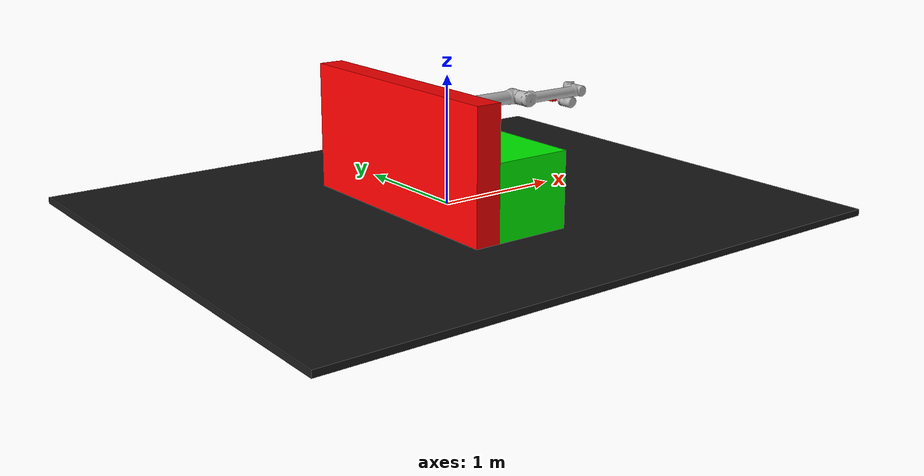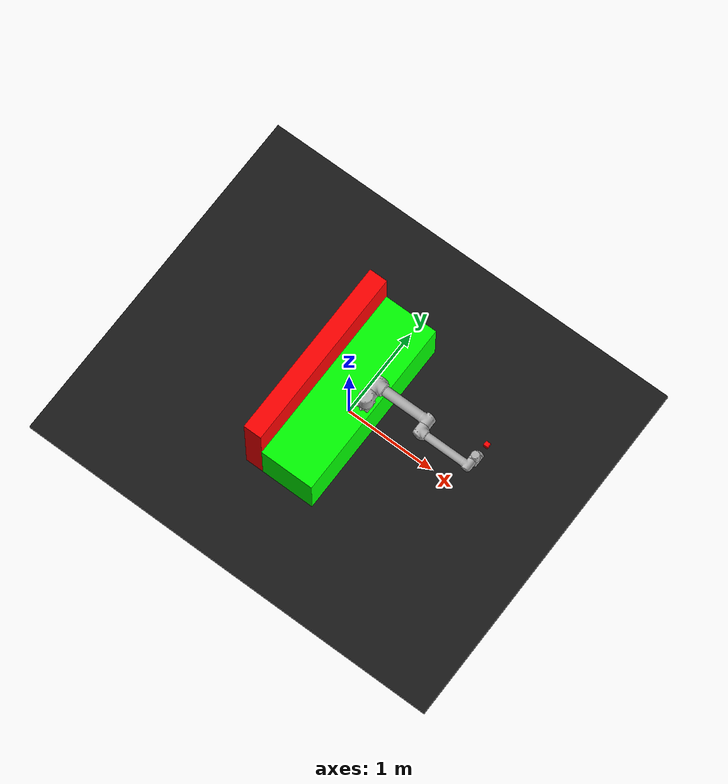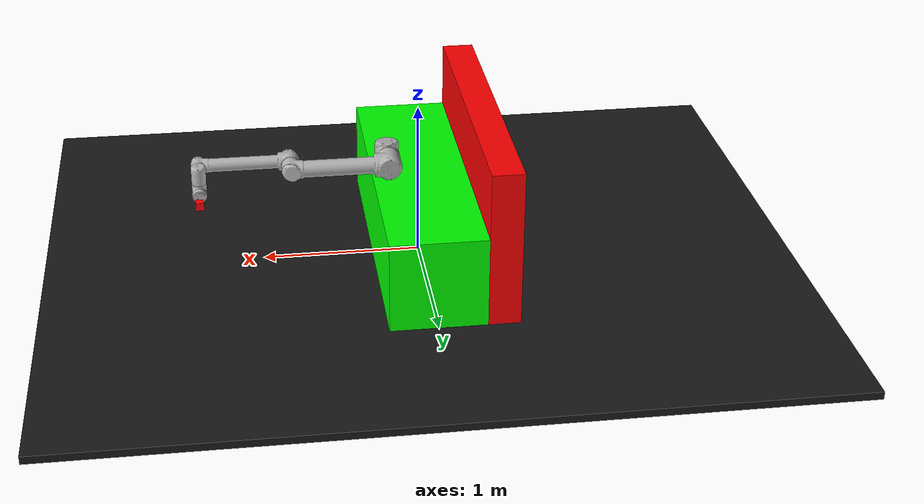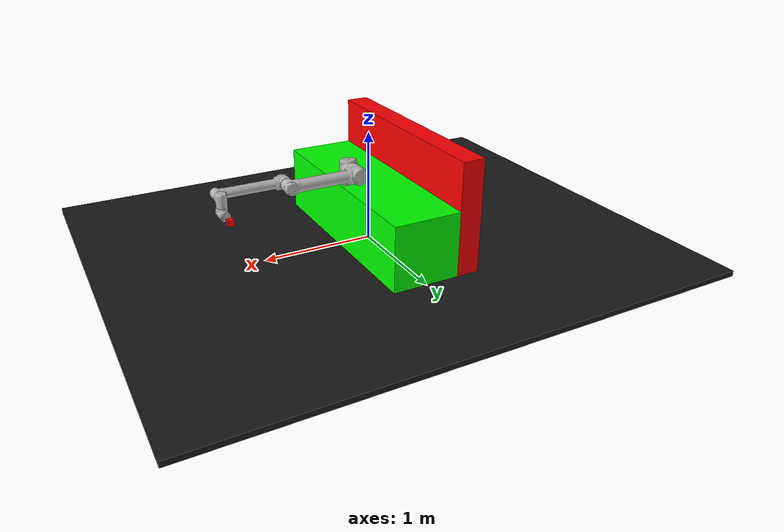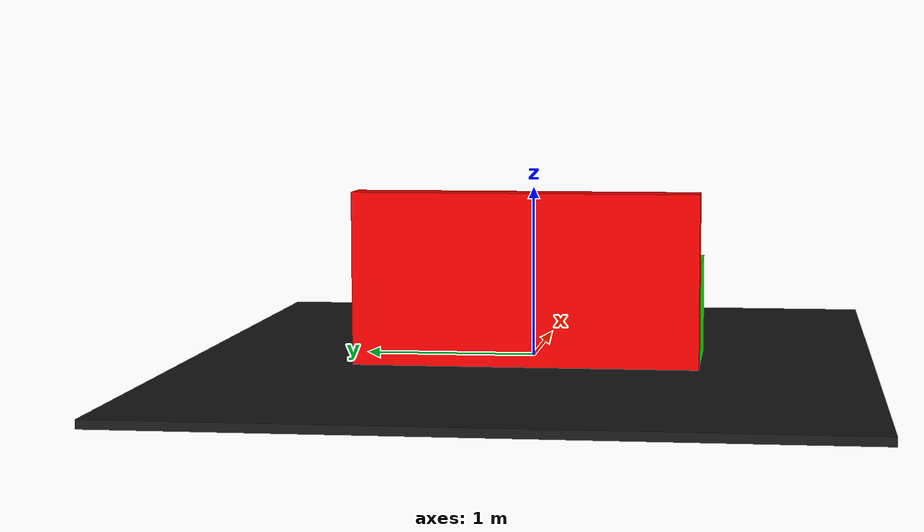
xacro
<?xml version="1.0"?>
<robot name="vegebot" xmlns:xacro="http://ros.org/wiki/xacro">

<!--
  Author: Simon Birrell
  BIRL Laboratory, Engineering Dept., University of Cambridge
-->

  <!-- Vegebot platform dimensions -->
  <xacro:property name="floor_thickness" value="0.05" />

  <xacro:property name="platform_width" value="2.0" />
  <xacro:property name="platform_height" value="0.58" />
  <xacro:property name="platform_length" value="0.6" />

  <xacro:property name="rear_platform_width" value="2.0" />
  <xacro:property name="rear_platform_height" value="1.0" />
  <xacro:property name="rear_platform_length" value="0.2" />
  <xacro:property name="rear_platform_to_origin_x" value="0.2" />

  <xacro:property name="front_platform_to_origin_arm" value="0.1" />
  <xacro:property name="top_platform_to_origin_arm" value="0.0" />

  <xacro:property name="ee_camera_offset_x" value="0.1" />
  <xacro:property name="camera_size" value="0.05" />

  <!-- common stuff -->
  <xacro:include filename="$(find ur_description)/urdf/common.gazebo.xacro" />

  <!-- ur10 -->
  <xacro:include filename="$(find vegebot_run)/urdf/ur10.urdf.xacro" />

  <!-- arm -->
  <xacro:ur10_robot prefix="" joint_limited="false"/>

  <link name="world">
    <!-- Draw a floor -->
    <visual>
      <geometry>
        <box size="${platform_length * 8.0} ${platform_width * 2.0} ${floor_thickness}" />
      </geometry>
      <origin xyz="0.0 0.0 ${-floor_thickness / 2.0}" />
      <material name="gray">
        <color rgba="0.1 0.1 0.1 1" />
      </material>
    </visual>
  </link>

  <link name="platform">

    <visual>
      <geometry>
        <box size="${platform_length} ${platform_width} ${platform_height}" />
      </geometry>
      <origin xyz="0.0 0.0 ${platform_height / 2.0}" />
      <material name="green">
        <color rgba="0 1 0 1" />
      </material>
    </visual>

  </link>

  <link name="rear_platform">

    <visual>
      <geometry>
        <box size="${rear_platform_length} ${rear_platform_width} ${rear_platform_height}" />
      </geometry>
      <origin xyz="0.0 0.0 ${rear_platform_height / 2.0}" />
      <material name="red">
        <color rgba="1 0 0 1" />
      </material>
    </visual>

  </link>

  <link name="camera_link">
    <visual>
      <geometry>
        <box size="${camera_size} ${camera_size} ${camera_size}" />
      </geometry>
      <origin xyz="0.0 0.0 0.0" />
      <material name="red">
         <color rgba="1 0 0 1" />
      </material>
    </visual>
  </link>

  <joint name="world_joint" type="fixed">
    <parent link="world" />
    <child link = "platform" />
    <origin xyz="0.0 0.0 0.0" rpy="0.0 0.0 0.0" />
  </joint>

  <joint name="world_to_rear_platform_joint" type="fixed">
    <parent link="world" />
    <child link = "rear_platform" />
    <origin xyz="${-(platform_length/2.0)-(rear_platform_length/2.0)} 0.0 0.0" rpy="0.0 0.0 0.0" />
  </joint>

  <joint name="platform_arm_joint" type="fixed">
    <parent link="platform" />
    <child link = "base_link" />
    <origin xyz="${(platform_length/2.0) - front_platform_to_origin_arm} 0.0 ${platform_height + top_platform_to_origin_arm}" rpy="0.0 0.0 0.0" />
  </joint>

  <joint name="end_effector_joint" type="fixed">
    <parent link="ee_link" />
    <child link = "camera_link" />
    <origin xyz="${ee_camera_offset_x} 0.0 0.0" rpy="0.0 0.0 0.0" />
  </joint>

</robot>

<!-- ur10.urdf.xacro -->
<robot xmlns:xacro="http://ros.org/wiki/xacro">

<!--
  Author: Kelsey Hawkins
  Contributers: Jimmy Da Silva, Ajit Krisshna N L, Muhammad Asif Rana
-->

  <xacro:include filename="$(find ur_description)/urdf/ur.transmission.xacro" />
  <xacro:include filename="$(find ur_description)/urdf/ur.gazebo.xacro" />

  <!-- Inertia parameters -->
  <xacro:property name="base_mass" value="4.0" />  <!-- This mass might be incorrect -->
  <xacro:property name="shoulder_mass" value="7.778" />
  <xacro:property name="upper_arm_mass" value="12.93" />
  <xacro:property name="forearm_mass" value="3.87" />
  <xacro:property name="wrist_1_mass" value="1.96" />
  <xacro:property name="wrist_2_mass" value="1.96" />
  <xacro:property name="wrist_3_mass" value="0.202" />

  <xacro:property name="shoulder_cog" value="0.00008 0.00244 -0.037" />
  <xacro:property name="upper_arm_cog" value="0.00001 0.15061 0.38757" />
  <xacro:property name="forearm_cog" value="-0.00012 0.06112 0.1984" />
  <xacro:property name="wrist_1_cog" value="-0.00021 -0.00112 0.02269" />
  <xacro:property name="wrist_2_cog" value="-0.00021 0.00112 0.002269" />
  <xacro:property name="wrist_3_cog" value="0 -0.001156 -0.00149" />

  <!-- Kinematic model -->
  <!-- Properties from urcontrol.conf -->
  <xacro:property name="ur10_d1" value="0.1273" />
  <xacro:property name="ur10_a2" value="-0.612" />
  <xacro:property name="ur10_a3" value="-0.5723" />
  <xacro:property name="ur10_d4" value="0.163941" />
  <xacro:property name="ur10_d5" value="0.1157" />
  <xacro:property name="ur10_d6" value="0.0922" />

  <!-- Arbitrary offsets for shoulder/elbow joints -->
  <xacro:property name="shoulder_offset" value="0.220941" />  <!-- measured from model -->
  <xacro:property name="elbow_offset" value="-0.1719" /> <!-- measured from model -->

  <!-- link lengths used in model -->
  <xacro:property name="shoulder_height" value="${ur10_d1}" />
  <xacro:property name="upper_arm_length" value="${-ur10_a2}" />
  <xacro:property name="forearm_length" value="${-ur10_a3}" />
  <xacro:property name="wrist_1_length" value="${ur10_d4 - elbow_offset - shoulder_offset}" />
  <xacro:property name="wrist_2_length" value="${ur10_d5}" />
  <xacro:property name="wrist_3_length" value="${ur10_d6}" />

  <xacro:macro name="cylinder_inertial" params="radius length mass *origin">
    <inertial>
      <mass value="${mass}" />
      <xacro:insert_block name="origin" />
      <inertia ixx="${0.0833333 * mass * (3 * radius * radius + length * length)}" ixy="0.0" ixz="0.0"
        iyy="${0.0833333 * mass * (3 * radius * radius + length * length)}" iyz="0.0"
        izz="${0.5 * mass * radius * radius}" />
    </inertial>
  </xacro:macro>

  <xacro:macro name="ur10_robot" params="prefix joint_limited
		 shoulder_pan_lower_limit:=${-pi}    shoulder_pan_upper_limit:=${pi}
		 shoulder_lift_lower_limit:=${-pi}    shoulder_lift_upper_limit:=${pi}
		 elbow_joint_lower_limit:=${-pi}    elbow_joint_upper_limit:=${pi}
		 wrist_1_lower_limit:=${-pi}    wrist_1_upper_limit:=${pi}
		 wrist_2_lower_limit:=${-pi}    wrist_2_upper_limit:=${pi}
		 wrist_3_lower_limit:=${-pi}    wrist_3_upper_limit:=${pi}">

    <link name="${prefix}base_link" >
      <visual>
        <geometry>
          <mesh filename="package://ur_description/meshes/ur10/visual/base.dae"/>
        </geometry>
        <material name="LightGrey">
          <color rgba="0.7 0.7 0.7 1.0"/>
        </material>
      </visual>
      <collision>
        <geometry>
          <mesh filename="package://ur_description/meshes/ur10/collision/base.stl"/>
        </geometry>
      </collision>
      <xacro:cylinder_inertial radius="0.075" length="0.038" mass="${base_mass}">
        <origin xyz="0.0 0.0 0.0" rpy="0 0 0" />
      </xacro:cylinder_inertial>
    </link>

    <joint name="${prefix}shoulder_pan_joint" type="revolute">
      <parent link="${prefix}base_link" />
      <child link = "${prefix}shoulder_link" />
      <origin xyz="0.0 0.0 ${shoulder_height}" rpy="0.0 0.0 0.0" />
      <axis xyz="0 0 1" />
      <xacro:unless value="${joint_limited}">
        <limit lower="${-2.0 * pi}" upper="${2.0 * pi}" effort="330.0" velocity="2.16"/>
      </xacro:unless>
      <xacro:if value="${joint_limited}">
        <limit lower="${shoulder_pan_lower_limit}" upper="${shoulder_pan_upper_limit}" effort="330.0" velocity="2.16"/>
      </xacro:if>
      <dynamics damping="0.0" friction="0.0"/>
    </joint>

    <link name="${prefix}shoulder_link">
      <visual>
        <geometry>
          <mesh filename="package://ur_description/meshes/ur10/visual/shoulder.dae"/>
        </geometry>
        <material name="LightGrey">
          <color rgba="0.7 0.7 0.7 1.0"/>
        </material>
      </visual>
      <collision>
        <geometry>
          <mesh filename="package://ur_description/meshes/ur10/collision/shoulder.stl"/>
        </geometry>
      </collision>
      <xacro:cylinder_inertial radius="0.075" length="0.178" mass="${shoulder_mass}">
        <origin xyz="0.0 0.0 0.0" rpy="0 0 0" />
      </xacro:cylinder_inertial>
    </link>

    <joint name="${prefix}shoulder_lift_joint" type="revolute">
      <parent link="${prefix}shoulder_link" />
      <child link = "${prefix}upper_arm_link" />
      <origin xyz="0.0 ${shoulder_offset} 0.0" rpy="0.0 ${pi / 2.0} 0.0" />
      <axis xyz="0 1 0" />
      <xacro:unless value="${joint_limited}">
        <limit lower="${-2.0 * pi}" upper="${2.0 * pi}" effort="330.0" velocity="2.16"/>
      </xacro:unless>
      <xacro:if value="${joint_limited}">
        <limit lower="${shoulder_lift_lower_limit}" upper="${shoulder_lift_upper_limit}" effort="330.0" velocity="2.16"/>
      </xacro:if>
      <dynamics damping="0.0" friction="0.0"/>
    </joint>

    <link name="${prefix}upper_arm_link">
      <visual>
        <geometry>
          <mesh filename="package://ur_description/meshes/ur10/visual/upperarm.dae"/>
        </geometry>
        <material name="LightGrey">
          <color rgba="0.7 0.7 0.7 1.0"/>
        </material>
      </visual>
      <collision>
        <geometry>
          <mesh filename="package://ur_description/meshes/ur10/collision/upperarm.stl"/>
        </geometry>
      </collision>
      <xacro:cylinder_inertial radius="0.075" length="${-ur10_a2}" mass="${upper_arm_mass}">
        <origin xyz="0.0 0.0 ${-ur10_a2/2.0}" rpy="0 0 0" />
      </xacro:cylinder_inertial>
    </link>

    <joint name="${prefix}elbow_joint" type="revolute">
      <parent link="${prefix}upper_arm_link" />
      <child link = "${prefix}forearm_link" />
      <origin xyz="0.0 ${elbow_offset} ${upper_arm_length}" rpy="0.0 0.0 0.0" />
      <axis xyz="0 1 0" />
      <xacro:unless value="${joint_limited}">
        <limit lower="${-1.0 * pi}" upper="${1.0 * pi}" effort="150.0" velocity="3.15"/>
      </xacro:unless>
      <xacro:if value="${joint_limited}">
        <limit lower="${elbow_joint_lower_limit}" upper="${elbow_joint_upper_limit}" effort="150.0" velocity="3.15"/>
      </xacro:if>
      <dynamics damping="0.0" friction="0.0"/>
    </joint>

    <link name="${prefix}forearm_link">
      <visual>
         <geometry>
          <mesh filename="package://ur_description/meshes/ur10/visual/forearm.dae"/>
        </geometry>
        <material name="LightGrey">
          <color rgba="0.7 0.7 0.7 1.0"/>
        </material>
      </visual>
      <collision>
        <geometry>
          <mesh filename="package://ur_description/meshes/ur10/collision/forearm.stl"/>
        </geometry>
      </collision>
      <xacro:cylinder_inertial radius="0.075" length="${-ur10_a3}" mass="${forearm_mass}">
        <origin xyz="0.0 0.0 ${-ur10_a3/2.0}" rpy="0 0 0" />
      </xacro:cylinder_inertial>
    </link>

    <joint name="${prefix}wrist_1_joint" type="revolute">
      <parent link="${prefix}forearm_link" />
      <child link = "${prefix}wrist_1_link" />
      <origin xyz="0.0 0.0 ${forearm_length}" rpy="0.0 ${pi / 2.0} 0.0" />
      <axis xyz="0 1 0" />
      <xacro:unless value="${joint_limited}">
        <limit lower="${-2.0 * pi}" upper="${2.0 * pi}" effort="54.0" velocity="3.2"/>
      </xacro:unless>
      <xacro:if value="${joint_limited}">
        <limit lower="${wrist_1_lower_limit}" upper="${wrist_1_upper_limit}" effort="54.0" velocity="3.2"/>
      </xacro:if>
      <dynamics damping="0.0" friction="0.0"/>
    </joint>

    <link name="${prefix}wrist_1_link">
      <visual>
        <geometry>
          <mesh filename="package://ur_description/meshes/ur10/visual/wrist1.dae"/>
        </geometry>
        <material name="LightGrey">
          <color rgba="0.7 0.7 0.7 1.0"/>
        </material>
      </visual>
      <collision>
        <geometry>
          <mesh filename="package://ur_description/meshes/ur10/collision/wrist1.stl"/>
        </geometry>
      </collision>
      <xacro:cylinder_inertial radius="0.075" length="0.12" mass="${wrist_1_mass}">
        <origin xyz="0.0 0.0 0.0" rpy="0 0 0" />
      </xacro:cylinder_inertial>
    </link>

    <joint name="${prefix}wrist_2_joint" type="revolute">
      <parent link="${prefix}wrist_1_link" />
      <child link = "${prefix}wrist_2_link" />
      <origin xyz="0.0 ${wrist_1_length} 0.0" rpy="0.0 0.0 0.0" />
      <axis xyz="0 0 1" />
      <xacro:unless value="${joint_limited}">
        <limit lower="${-2.0 * pi}" upper="${2.0 * pi}" effort="54.0" velocity="3.2"/>
      </xacro:unless>
      <xacro:if value="${joint_limited}">
        <limit lower="${wrist_2_lower_limit}" upper="${wrist_2_upper_limit}" effort="54.0" velocity="3.2"/>
      </xacro:if>
      <dynamics damping="0.0" friction="0.0"/>
    </joint>

    <link name="${prefix}wrist_2_link">
      <visual>
        <geometry>
          <mesh filename="package://ur_description/meshes/ur10/visual/wrist2.dae"/>
        </geometry>
        <material name="LightGrey">
          <color rgba="0.7 0.7 0.7 1.0"/>
        </material>
      </visual>
      <collision>
        <geometry>
          <mesh filename="package://ur_description/meshes/ur10/collision/wrist2.stl"/>
        </geometry>
      </collision>
      <xacro:cylinder_inertial radius="0.075" length="0.12" mass="${wrist_2_mass}">
        <origin xyz="0.0 0.0 0.0" rpy="0 0 0" />
      </xacro:cylinder_inertial>
    </link>

    <joint name="${prefix}wrist_3_joint" type="revolute">
      <parent link="${prefix}wrist_2_link" />
      <child link = "${prefix}wrist_3_link" />
      <origin xyz="0.0 0.0 ${wrist_2_length}" rpy="0.0 0.0 0.0" />
      <axis xyz="0 1 0" />
      <xacro:unless value="${joint_limited}">
        <limit lower="${-2.0 * pi}" upper="${2.0 * pi}" effort="54.0" velocity="3.2"/>
      </xacro:unless>
      <xacro:if value="${joint_limited}">
        <limit lower="${wrist_3_lower_limit}" upper="${wrist_3_upper_limit}" effort="54.0" velocity="3.2"/>
      </xacro:if>
      <dynamics damping="0.0" friction="0.0"/>
    </joint>

    <link name="${prefix}wrist_3_link">
      <visual>
        <geometry>
          <mesh filename="package://ur_description/meshes/ur10/visual/wrist3.dae"/>
        </geometry>
        <material name="LightGrey">
          <color rgba="0.7 0.7 0.7 1.0"/>
        </material>
      </visual>
      <collision>
        <geometry>
          <mesh filename="package://ur_description/meshes/ur10/collision/wrist3.stl"/>
        </geometry>
      </collision>
      <xacro:cylinder_inertial radius="0.075" length="0.12" mass="${wrist_3_mass}">
        <origin xyz="0.0 0.0 0.0" rpy="0 0 0" />
      </xacro:cylinder_inertial>
    </link>

    <joint name="${prefix}ee_fixed_joint" type="fixed">
      <parent link="${prefix}wrist_3_link" />
      <child link = "${prefix}ee_link" />
      <origin xyz="0.0 ${wrist_3_length} 0.0" rpy="0.0 0.0 ${pi/2.0}" />
    </joint>

    <link name="${prefix}ee_link">
      <collision>
        <geometry>
          <box size="0.01 0.01 0.01"/>
        </geometry>
        <origin rpy="0 0 0" xyz="-0.01 0 0"/>
      </collision>
    </link>

    <xacro:ur_arm_transmission prefix="${prefix}" />
    <xacro:ur_arm_gazebo prefix="${prefix}" />

    <!-- ROS base_link to UR 'Base' Coordinates transform -->
    <link name="${prefix}base"/>
    <joint name="${prefix}base_link-base_fixed_joint" type="fixed">
      <!-- NOTE: this rotation is only needed as long as base_link itself is
                 not corrected wrt the real robot (ie: rotated over 180
                 degrees)
      -->
      <origin xyz="0 0 0" rpy="0 0 ${-pi}"/>
      <parent link="${prefix}base_link"/>
      <child link="${prefix}base"/>
    </joint>

    <!-- Frame coincident with all-zeros TCP on UR controller -->
    <link name="${prefix}tool0"/>
    <joint name="${prefix}wrist_3_link-tool0_fixed_joint" type="fixed">
      <origin xyz="0 ${wrist_3_length} 0" rpy="${pi/-2.0} 0 0"/>
      <parent link="${prefix}wrist_3_link"/>
      <child link="${prefix}tool0"/>
    </joint>

  </xacro:macro>
</robot>
